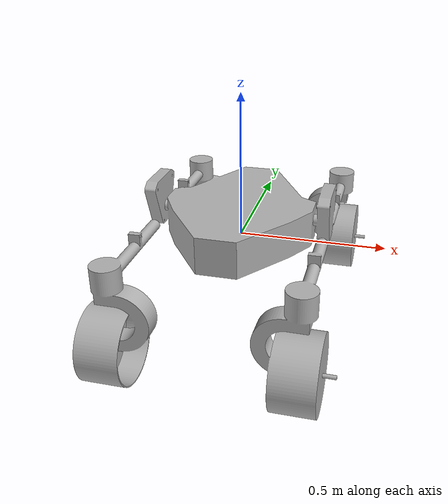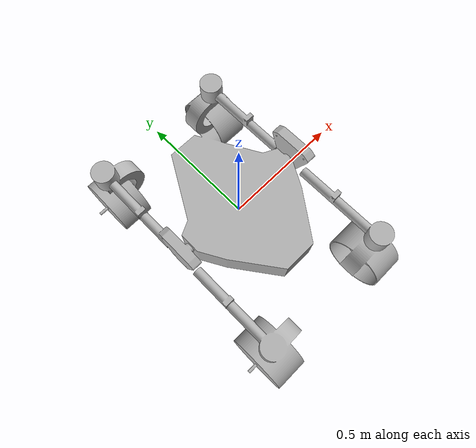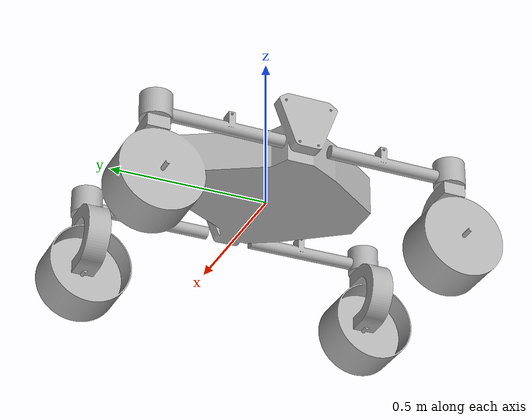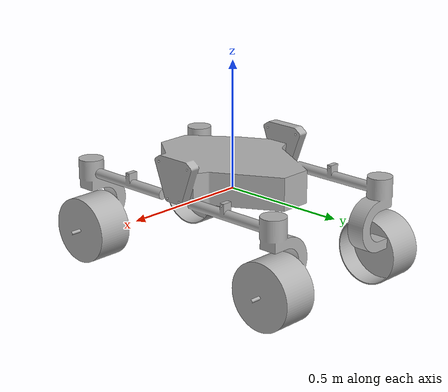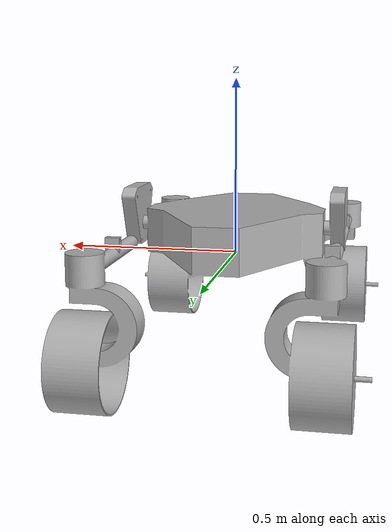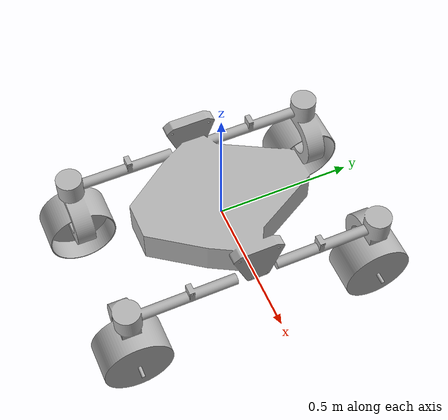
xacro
<?xml version="1.0" ?>
<robot name="lazik_simple_urdf" xmlns:xacro="http://www.ros.org/wiki/xacro">

<xacro:include filename="$(find rover_meshes_lookup)/urdf/materials.xacro" />
<xacro:include filename="$(find rover_meshes_lookup)/urdf/lazik_simple_urdf.ros2control" />
<xacro:include filename="$(find rover_meshes_lookup)/urdf/lazik_simple_urdf.gazebo" />
<link name="base_link">
  <inertial>
    <origin xyz="-0.0002565973605875864 -0.006153080406218198 -0.018359726986079426" rpy="0 0 0"/>
    <mass value="402.8334927971132"/>
    <inertia ixx="48.40805" iyy="27.060197" izz="62.748722" ixy="-0.044577" iyz="0.236232" ixz="-0.01844"/>
  </inertial>
  <visual>
    <origin xyz="0 0 0" rpy="0 0 0"/>
    <geometry>
      <mesh filename="file://$(find rover_meshes_lookup)/meshes/base_link.stl" scale="0.001 0.001 0.001"/>
    </geometry>
    <material name="silver"/>
  </visual>
  <collision>
    <origin xyz="0 0 0" rpy="0 0 0"/>
    <geometry>
      <mesh filename="file://$(find rover_meshes_lookup)/meshes/base_link.stl" scale="0.001 0.001 0.001"/>
    </geometry>
  </collision>
</link>

</robot>

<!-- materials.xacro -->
<robot name="lazik_simple_urdf" xmlns:xacro="http://www.ros.org/wiki/xacro" >

<material name="silver">
  <color rgba="0.700 0.700 0.700 1.000"/>
</material>

</robot>

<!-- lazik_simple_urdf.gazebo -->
<robot name="lazik_simple_urdf" xmlns:xacro="http://www.ros.org/wiki/xacro" >

<xacro:property name="body_color" value="Gazebo/Silver" />

<gazebo reference="base_link">
  <material>${body_color}</material>
  <mu1>0.2</mu1>
  <mu2>0.2</mu2>
  <self_collide>true</self_collide>
  <gravity>true</gravity>
</gazebo>

</robot>
